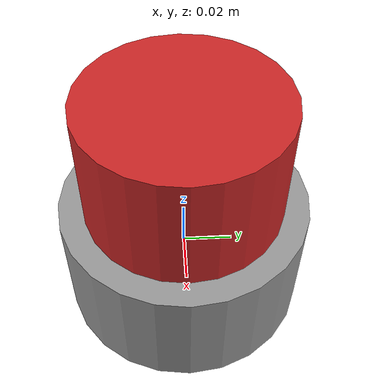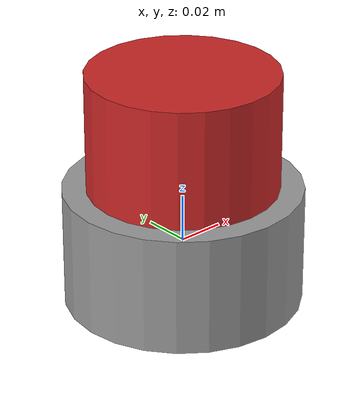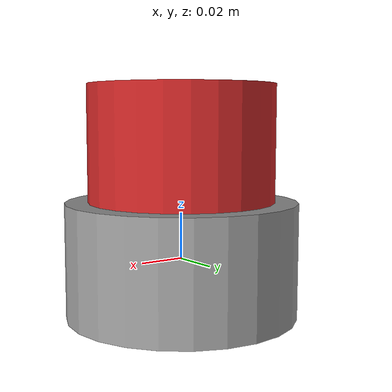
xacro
<?xml version="1.0"?>
<robot xmlns:xacro="http://www.ros.org/wiki/xacro" name="lazDar">
  <xacro:property name="base_radius" value="0.05"/>
  <xacro:property name="base_height" value="0.05"/>
  <xacro:property name="laz_radius" value="0.04"/>
  <xacro:property name="laz_height" value="0.1"/>

  <gazebo reference="laz_base">
    <material>Gazebo/Grey</material>
    <mu1>0.2</mu1>
    <mu2>0.2</mu2>
  </gazebo>

  <link name="laz_base">
    <visual>
      <geometry>
        <cylinder length="${base_height}" radius="${base_radius}"/>
      </geometry>
    </visual>

    <collision>
      <geometry>
        <cylinder length="${base_height}" radius="${base_radius}"/>
      </geometry>
    </collision>

    <inertial>
      <mass value="0.1"/>
      <inertia ixx="${(1/12) * 0.1 * (3 * base_radius * base_radius + base_height * base_height)}" ixy="0" ixz="0" iyy="${(1/12) * 0.1 * (3 * base_radius * base_radius + base_height * base_height)}" iyz="0" izz="${(1/2) * 0.1 * base_radius * base_radius}"/>
    </inertial>
  </link>

  <gazebo reference="laz_rot">
    <material>Gazebo/RedGlow</material>
    <mu1>0.2</mu1>
    <mu2>0.2</mu2>
    <sensor type="ray" name="laz">
       <always_on>true</always_on>
       <pose>${laz_radius} 0 ${laz_height/4} 0 0 0</pose>
       <visualize>true</visualize>
       <update_rate>30</update_rate>
       <ray>
         <scan>
           <horizontal>
             <samples>15</samples>
             <resolution>1</resolution>
             <min_angle>-${pi}</min_angle>
             <max_angle>${pi}</max_angle>
           </horizontal>
           <vertical>
             <samples>1</samples>
             <resolution>1</resolution>
             <min_angle>0.01</min_angle>
             <max_angle>0.1</max_angle>
           </vertical>
         </scan>
          <range>
           <min>0.05</min>
           <max>15</max>
           <resolution>0.02</resolution>
         </range>
      </ray>

   </sensor>
  </gazebo>

  <link name="laz_rot">
    <visual>
      <geometry>
        <cylinder length="${laz_height}" radius="${laz_radius}"/>
      </geometry>
    </visual>

    <collision>
      <geometry>
        <cylinder length="${laz_height}" radius="${laz_radius}"/>
      </geometry>
    </collision>

    <inertial>
      <mass value="0.1"/>
      <inertia ixx="${(1/12) * 0.1 * (3 * laz_radius * laz_radius + laz_height * laz_height)}" ixy="0" ixz="0" iyy="${(1/12) * 0.1 * (3 * laz_radius * laz_radius + laz_height * laz_height)}" iyz="0" izz="${(1/2) * 0.1 * laz_radius * laz_radius}"/>
    </inertial>
  </link>

  <joint name="lazRot" type="continuous">
    <parent link="laz_base"/>
    <child link="laz_rot"/>
    <axis xyz="0 0 1"/>
    <origin xyz = "0 0 ${base_height/2}"/>
    <dynamics friction="0.1"/>
  </joint>
  <transmission name="lazer_trans">
    <type>transmission_interface/SimpleTransmission</type>
    <actuator name="motor2">
      <mechanicalReduction>1</mechanicalReduction>
    </actuator>
    <joint name="lazRot">
      <hardwareInterface>hardware_interface/PositionJointInterface</hardwareInterface>
    </joint>
</transmission>
</robot>
